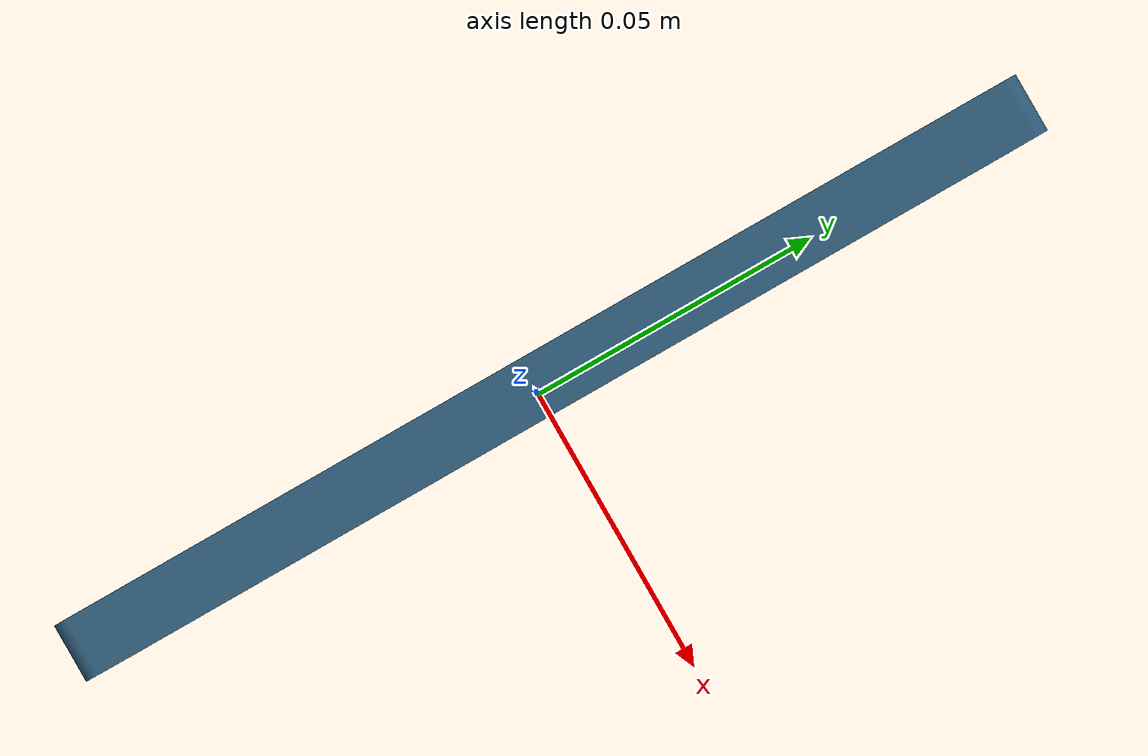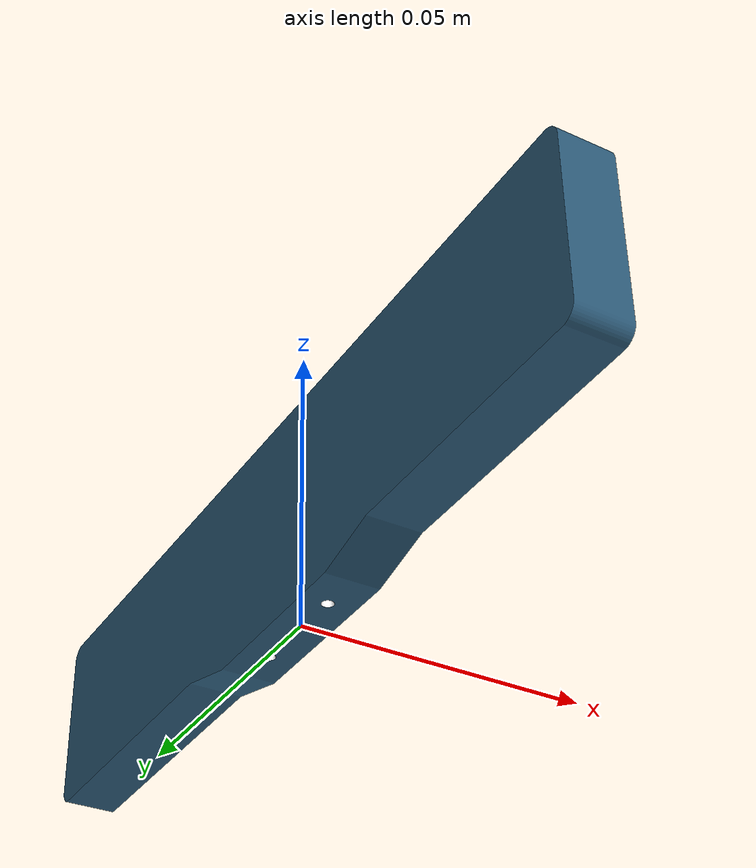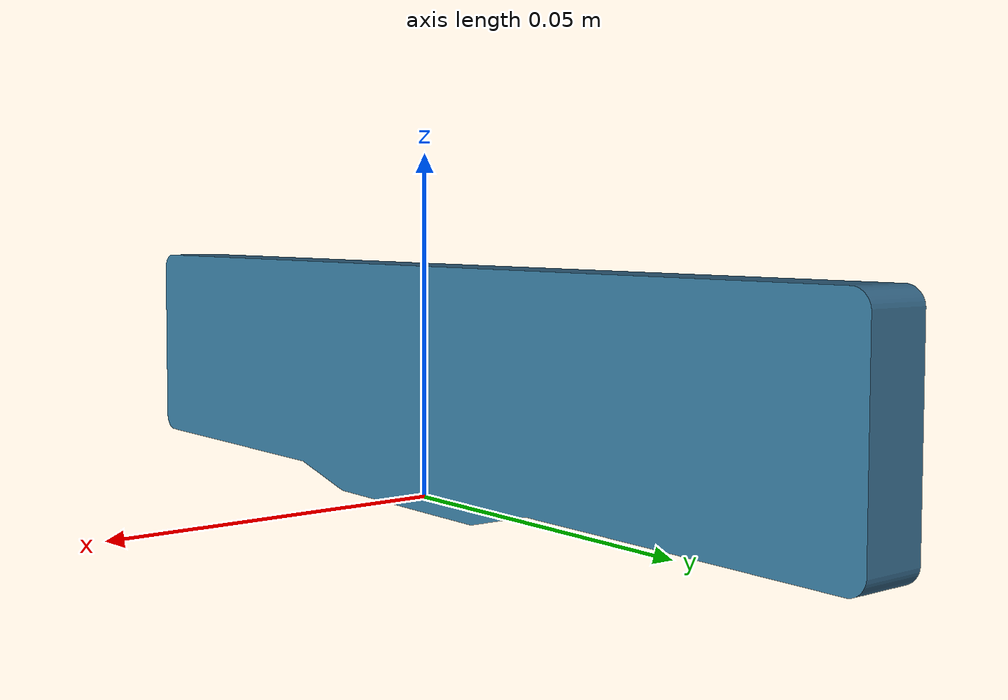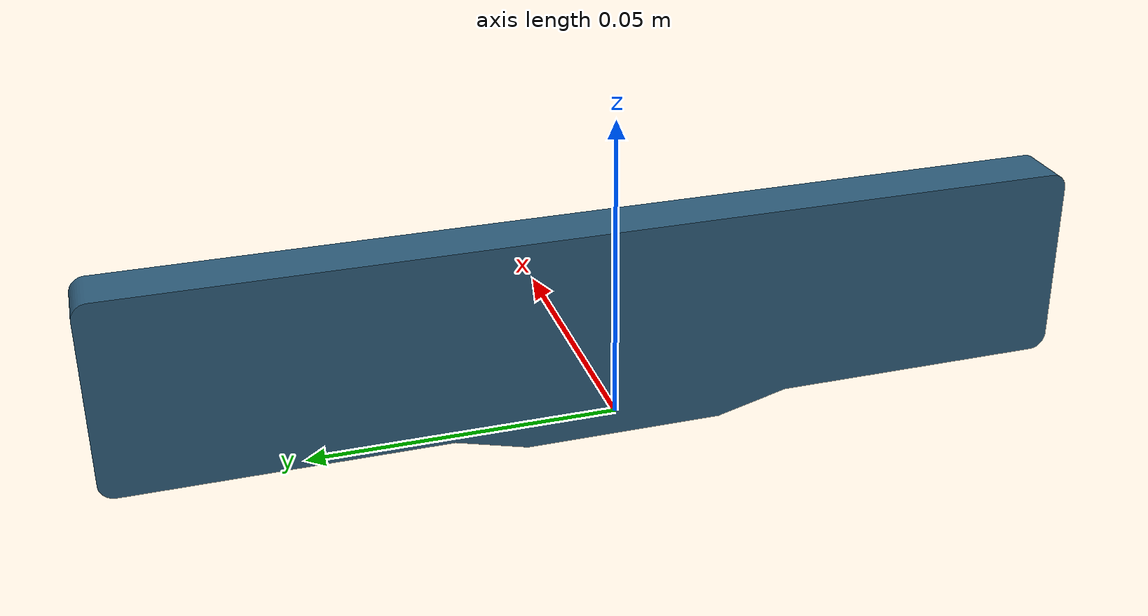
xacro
<?xml version="1.0"?>
<robot name="realsense_ros_camera" xmlns:xacro="http://ros.org/wiki/xacro">
  <xacro:include filename="$(find realsense_ros_camera)/urdf/_zr300.urdf.xacro"/>

  <link name="base_link" />
  <sensor_zr300 parent="base_link">
    <origin xyz="0 0 0" rpy="0 0 0"/>
  </sensor_zr300>
</robot>

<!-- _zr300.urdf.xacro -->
<!--
License: Apache 2.0. See LICENSE file in root directory.
Copyright(c) 2017 Intel Corporation. All Rights Reserved
-->

<robot name="sensor_zr300" xmlns:xacro="http://ros.org/wiki/xacro">
  <xacro:property name="M_PI" value="3.1415926535897931" />

  <xacro:property name="zr300_cam_rgb_px" value="-0.003"/>
  <xacro:property name="zr300_cam_rgb_py" value="-0.029"/>
  <xacro:property name="zr300_cam_rgb_pz" value="0.028"/>

  <xacro:property name="zr300_cam_rgb_to_depth_offset" value="0.023"/>
  <xacro:property name="zr300_cam_rgb_to_fisheye_offset" value="0.088"/>

  <xacro:property name="zr300_cam_width" value="0.155"/>
  <xacro:property name="zr300_cam_height" value="0.035"/>
  <xacro:property name="zr300_cam_depth" value="0.01"/>

  <xacro:macro name="sensor_zr300" params="parent *origin">

    <!-- camera body, with origin at bottom screw mount -->
    <joint name="camera_joint" type="fixed">
      <xacro:insert_block name="origin" />
      <parent link="${parent}"/>
      <child link="camera_link" />
    </joint>

    <link name="camera_link">
      <visual>
      <origin xyz="-0.005 0 0" rpy="${M_PI/2} 0 ${M_PI/2}"/>
        <geometry>
          <mesh filename="package://realsense_ros_camera/meshes/zr300/zr300.dae" />
        </geometry>
      </visual>
      <collision>
        <origin xyz="0.0 0.0 ${zr300_cam_height/2}" rpy="0 0 0"/>
        <geometry>
        <box size="${zr300_cam_depth} ${zr300_cam_width} ${zr300_cam_height}"/>
        </geometry>
      </collision>
      <inertial>
        <!-- The following are not reliable values, and should not be used for modeling -->
        <mass value="0.564" />
        <origin xyz="0 0 0" />
        <inertia ixx="0.003881243" ixy="0.0" ixz="0.0" iyy="0.000498940" iyz="0.0" izz="0.003879257" />
      </inertial>
    </link>

    <!-- camera rgb joints and links -->
    <joint name="camera_rgb_joint" type="fixed">
      <origin xyz="${zr300_cam_rgb_px} ${zr300_cam_rgb_py} ${zr300_cam_rgb_pz}" rpy="0 0 0"/>
      <parent link="camera_link"/>
      <child link="camera_rgb_frame" />
    </joint>
    <link name="camera_rgb_frame"/>

    <joint name="camera_rgb_optical_joint" type="fixed">
      <origin xyz="0 0 0" rpy="${-M_PI/2} 0 ${-M_PI/2}" />
      <parent link="camera_rgb_frame" />
      <child link="camera_rgb_optical_frame" />
    </joint>
    <link name="camera_rgb_optical_frame"/>

    <!-- camera depth joints and links -->
    <joint name="camera_depth_joint" type="fixed">
      <origin xyz="0 ${zr300_cam_rgb_to_depth_offset} 0" rpy="0 0 0" />
      <parent link="camera_rgb_frame" />
      <child link="camera_depth_frame" />
    </joint>
    <link name="camera_depth_frame"/>

    <joint name="camera_depth_optical_joint" type="fixed">
      <origin xyz="0 0 0" rpy="${-M_PI/2} 0 ${-M_PI/2}" />
      <parent link="camera_depth_frame" />
      <child link="camera_depth_optical_frame" />
    </joint>
    <link name="camera_depth_optical_frame"/>

    <!-- camera fisheye joints and links -->
    <joint name="camera_fisheye_joint" type="fixed">
      <origin xyz="0 ${zr300_cam_rgb_to_fisheye_offset} 0" rpy="0 0 0" />
      <parent link="camera_rgb_frame" />
      <child link="camera_fisheye_frame" />
    </joint>
    <link name="camera_fisheye_frame"/>

    <joint name="camera_fisheye_optical_joint" type="fixed">
      <origin xyz="0 0 0" rpy="${-M_PI/2} 0 ${-M_PI/2}" />
      <parent link="camera_fisheye_frame" />
      <child link="camera_fisheye_optical_frame" />
    </joint>
    <link name="camera_fisheye_optical_frame"/>
  </xacro:macro>
</robot>
